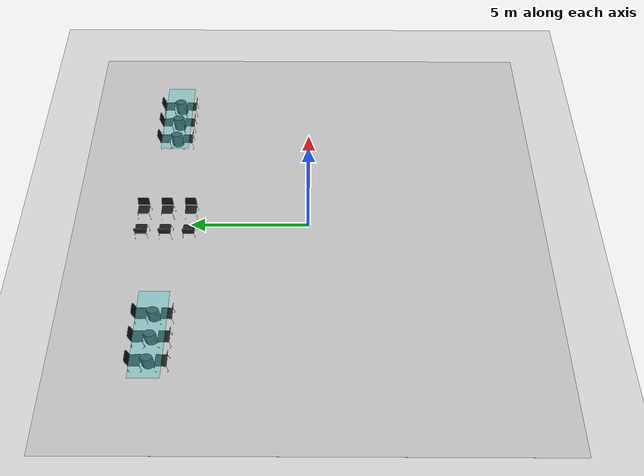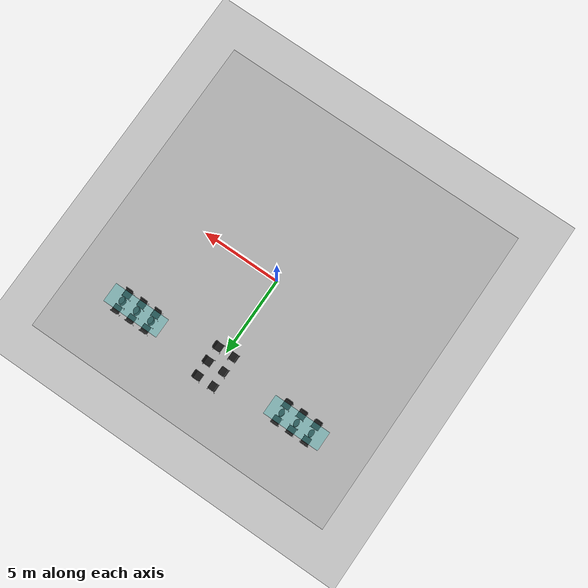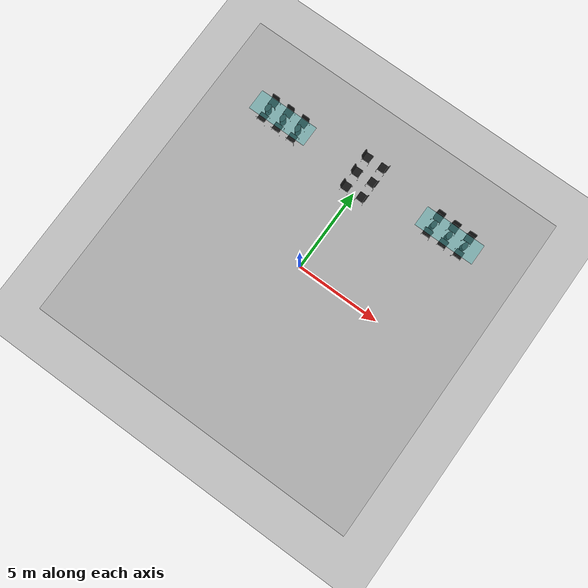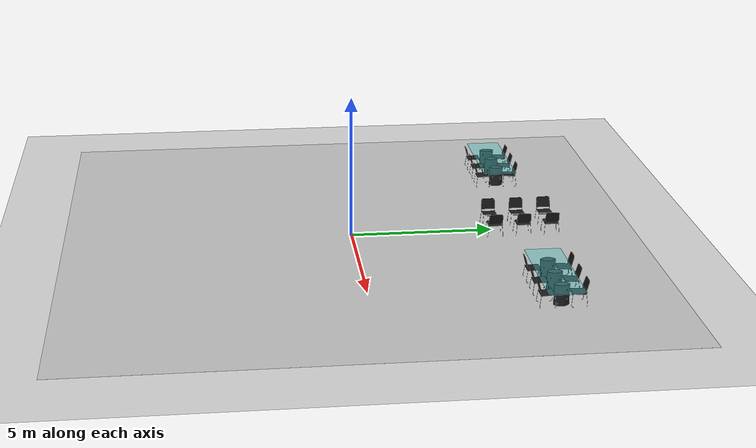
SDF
<sdf version="1.6">
 <world name="default">
  <model name="ground_plane">
   <static>1</static>
   <link name="link">
    <collision name="collision">
     <geometry><plane><normal>0 0 1</normal><size>100 100</size></plane></geometry>
     <surface><friction><ode><mu>1</mu><mu2>1</mu2></ode></friction></surface>
    </collision>
    <visual name="visual">
     <cast_shadows>0</cast_shadows>
     <geometry><plane><normal>0 0 1</normal><size>100 100</size></plane></geometry>
     <material>
      <script><uri>file://media/materials/scripts/gazebo.material</uri><name>Gazebo/Grey</name></script>
     </material>
    </visual>
    <velocity_decay><linear>0</linear><angular>0</angular></velocity_decay>
   </link>
  </model>
  <model name="chair_3">
   <link name="link_4">
    <pose>-0.282457 -0.259387 0 0 -0 0</pose>
    <visual name="visual">
     <geometry><mesh><uri>model://chair_3/meshes/model.dae</uri><scale>1 1 1</scale></mesh></geometry>
     <material>
      <lighting>1</lighting>
      <ambient>0 0 0 1</ambient>
      <diffuse>0.1 0.1 0.1 1</diffuse>
      <specular>0.01 0.01 0.01 1</specular>
      <emissive>0 0 0 1</emissive>
     </material>
    </visual>
    <collision name="collision">
     <geometry><mesh><uri>model://chair_3/meshes/model.dae</uri><scale>1 1 1</scale></mesh></geometry>
    </collision>
   </link>
   <static>1</static>
   <pose>4.5 6.5 0 0 -0 0</pose>
  </model>
  <model name="chair_3_clone">
   <link name="link_4">
    <pose>-0.282457 -0.259387 0 0 -0 0</pose>
    <visual name="visual">
     <geometry><mesh><uri>model://chair_3/meshes/model.dae</uri><scale>1 1 1</scale></mesh></geometry>
     <material>
      <lighting>1</lighting>
      <ambient>0 0 0 1</ambient>
      <diffuse>0.1 0.1 0.1 1</diffuse>
      <specular>0.01 0.01 0.01 1</specular>
      <emissive>0 0 0 1</emissive>
     </material>
    </visual>
    <collision name="collision">
     <geometry><mesh><uri>model://chair_3/meshes/model.dae</uri><scale>1 1 1</scale></mesh></geometry>
    </collision>
   </link>
   <static>1</static>
   <pose>5.5 6.5 0 0 -0 0</pose>
  </model>
  <model name="chair_3_clone_0">
   <link name="link_4">
    <pose>-0.282457 -0.259387 0 0 -0 0</pose>
    <visual name="visual">
     <geometry><mesh><uri>model://chair_3/meshes/model.dae</uri><scale>1 1 1</scale></mesh></geometry>
     <material>
      <lighting>1</lighting>
      <ambient>0 0 0 1</ambient>
      <diffuse>0.1 0.1 0.1 1</diffuse>
      <specular>0.01 0.01 0.01 1</specular>
      <emissive>0 0 0 1</emissive>
     </material>
    </visual>
    <collision name="collision">
     <geometry><mesh><uri>model://chair_3/meshes/model.dae</uri><scale>1 1 1</scale></mesh></geometry>
    </collision>
   </link>
   <static>1</static>
   <pose>6.5 6.5 0 0 -0 0</pose>
  </model>
  <model name="chair_3_clone_1">
   <link name="link_4">
    <pose>-0.282457 -0.259387 0 0 -0 0</pose>
    <visual name="visual">
     <geometry><mesh><uri>model://chair_3/meshes/model.dae</uri><scale>1 1 1</scale></mesh></geometry>
     <material>
      <lighting>1</lighting>
      <ambient>0 0 0 1</ambient>
      <diffuse>0.1 0.1 0.1 1</diffuse>
      <specular>0.01 0.01 0.01 1</specular>
      <emissive>0 0 0 1</emissive>
     </material>
    </visual>
    <collision name="collision">
     <geometry><mesh><uri>model://chair_3/meshes/model.dae</uri><scale>1 1 1</scale></mesh></geometry>
    </collision>
   </link>
   <static>1</static>
   <pose>6.5 5.5 0 0 -0 3.13584</pose>
  </model>
  <model name="chair_3_clone_1_clone">
   <link name="link_4">
    <pose>-0.282457 -0.259387 0 0 -0 0</pose>
    <visual name="visual">
     <geometry><mesh><uri>model://chair_3/meshes/model.dae</uri><scale>1 1 1</scale></mesh></geometry>
     <material>
      <lighting>1</lighting>
      <ambient>0 0 0 1</ambient>
      <diffuse>0.1 0.1 0.1 1</diffuse>
      <specular>0.01 0.01 0.01 1</specular>
      <emissive>0 0 0 1</emissive>
     </material>
    </visual>
    <collision name="collision">
     <geometry><mesh><uri>model://chair_3/meshes/model.dae</uri><scale>1 1 1</scale></mesh></geometry>
    </collision>
   </link>
   <static>1</static>
   <pose>5.5 5.5 0 0 -0 3.13584</pose>
  </model>
  <model name="chair_3_clone_1_clone_0">
   <link name="link_4">
    <pose>-0.282457 -0.259387 0 0 -0 0</pose>
    <visual name="visual">
     <geometry><mesh><uri>model://chair_3/meshes/model.dae</uri><scale>1 1 1</scale></mesh></geometry>
     <material>
      <lighting>1</lighting>
      <ambient>0 0 0 1</ambient>
      <diffuse>0.1 0.1 0.1 1</diffuse>
      <specular>0.01 0.01 0.01 1</specular>
      <emissive>0 0 0 1</emissive>
     </material>
    </visual>
    <collision name="collision">
     <geometry><mesh><uri>model://chair_3/meshes/model.dae</uri><scale>1 1 1</scale></mesh></geometry>
    </collision>
   </link>
   <static>1</static>
   <pose>4.5 5.5 0 0 -0 3.13584</pose>
  </model>
  <model name="table_conference_3">
   <link name="link_6">
    <visual name="visual">
     <geometry><mesh><uri>model://table_conference_3/meshes/leg.dae</uri><scale>1 1 1</scale></mesh></geometry>
     <material>
      <script>
       <uri>model://table_conference_3/materials/scripts</uri>
       <uri>model://table_conference_3/materials/textures</uri>
       <name>table_conf_3</name>
      </script>
     </material>
    </visual>
    <collision name="collision">
     <geometry><mesh><uri>model://table_conference_3/meshes/leg.dae</uri><scale>1 1 1</scale></mesh></geometry>
    </collision>
   </link>
   <link name="link_7">
    <visual name="visual">
     <geometry><mesh><uri>model://table_conference_3/meshes/top.dae</uri><scale>1 1 1</scale></mesh></geometry>
     <material>
      <lighting>1</lighting>
      <ambient>0.278 0.776 0.776 1</ambient>
      <diffuse>0.278 0.776 0.776 1</diffuse>
      <specular>0.01 0.01 0.01 1</specular>
      <emissive>0 0 0 1</emissive>
      <shader type="vertex"><normal_map>__default__</normal_map></shader>
     </material>
     <transparency>0.6</transparency>
    </visual>
    <collision name="collision">
     <geometry><mesh><uri>model://table_conference_3/meshes/top.dae</uri><scale>1 1 1</scale></mesh></geometry>
    </collision>
   </link>
   <link name="link_8">
    <pose>0 1 0 0 -0 0</pose>
    <visual name="visual">
     <geometry><mesh><uri>model://table_conference_3/meshes/leg.dae</uri><scale>1 1 1</scale></mesh></geometry>
     <material>
      <script>
       <uri>model://table_conference_3/materials/scripts</uri>
       <uri>model://table_conference_3/materials/textures</uri>
       <name>table_conf_3</name>
      </script>
     </material>
    </visual>
    <collision name="collision">
     <geometry><mesh><uri>model://table_conference_3/meshes/leg.dae</uri><scale>1 1 1</scale></mesh></geometry>
    </collision>
   </link>
   <link name="link_9">
    <pose>0 -1 0 0 -0 0</pose>
    <visual name="visual">
     <geometry><mesh><uri>model://table_conference_3/meshes/leg.dae</uri><scale>1 1 1</scale></mesh></geometry>
     <material>
      <script>
       <uri>model://table_conference_3/materials/scripts</uri>
       <uri>model://table_conference_3/materials/textures</uri>
       <name>table_conf_3</name>
      </script>
     </material>
    </visual>
    <collision name="collision">
     <geometry><mesh><uri>model://table_conference_3/meshes/leg.dae</uri><scale>1 1 1</scale></mesh></geometry>
    </collision>
   </link>
   <static>1</static>
   <pose>5.5 6 -0.002256 0 0 -1.57202</pose>
  </model>
  <model name="table_conference_3_0">
   <link name="link_6">
    <visual name="visual">
     <geometry><mesh><uri>model://table_conference_3/meshes/leg.dae</uri><scale>1 1 1</scale></mesh></geometry>
     <material>
      <script>
       <uri>model://table_conference_3/materials/scripts</uri>
       <uri>model://table_conference_3/materials/textures</uri>
       <name>table_conf_3</name>
      </script>
     </material>
    </visual>
    <collision name="collision">
     <geometry><mesh><uri>model://table_conference_3/meshes/leg.dae</uri><scale>1 1 1</scale></mesh></geometry>
    </collision>
   </link>
   <link name="link_7">
    <visual name="visual">
     <geometry><mesh><uri>model://table_conference_3/meshes/top.dae</uri><scale>1 1 1</scale></mesh></geometry>
     <material>
      <lighting>1</lighting>
      <ambient>0.278 0.776 0.776 1</ambient>
      <diffuse>0.278 0.776 0.776 1</diffuse>
      <specular>0.01 0.01 0.01 1</specular>
      <emissive>0 0 0 1</emissive>
      <shader type="vertex"><normal_map>__default__</normal_map></shader>
     </material>
     <transparency>0.6</transparency>
    </visual>
    <collision name="collision">
     <geometry><mesh><uri>model://table_conference_3/meshes/top.dae</uri><scale>1 1 1</scale></mesh></geometry>
    </collision>
   </link>
   <link name="link_8">
    <pose>0 1 0 0 -0 0</pose>
    <visual name="visual">
     <geometry><mesh><uri>model://table_conference_3/meshes/leg.dae</uri><scale>1 1 1</scale></mesh></geometry>
     <material>
      <script>
       <uri>model://table_conference_3/materials/scripts</uri>
       <uri>model://table_conference_3/materials/textures</uri>
       <name>table_conf_3</name>
      </script>
     </material>
    </visual>
    <collision name="collision">
     <geometry><mesh><uri>model://table_conference_3/meshes/leg.dae</uri><scale>1 1 1</scale></mesh></geometry>
    </collision>
   </link>
   <link name="link_9">
    <pose>0 -1 0 0 -0 0</pose>
    <visual name="visual">
     <geometry><mesh><uri>model://table_conference_3/meshes/leg.dae</uri><scale>1 1 1</scale></mesh></geometry>
     <material>
      <script>
       <uri>model://table_conference_3/materials/scripts</uri>
       <uri>model://table_conference_3/materials/textures</uri>
       <name>table_conf_3</name>
      </script>
     </material>
    </visual>
    <collision name="collision">
     <geometry><mesh><uri>model://table_conference_3/meshes/leg.dae</uri><scale>1 1 1</scale></mesh></geometry>
    </collision>
   </link>
   <static>1</static>
   <pose>-5.5 6 0 0 -0 1.5708</pose>
  </model>
  <model name="chair_3_0">
   <link name="link_4">
    <pose>-0.282457 -0.259387 0 0 -0 0</pose>
    <visual name="visual">
     <geometry><mesh><uri>model://chair_3/meshes/model.dae</uri><scale>1 1 1</scale></mesh></geometry>
     <material>
      <lighting>1</lighting>
      <ambient>0 0 0 1</ambient>
      <diffuse>0.1 0.1 0.1 1</diffuse>
      <specular>0.01 0.01 0.01 1</specular>
      <emissive>0 0 0 1</emissive>
     </material>
    </visual>
    <collision name="collision">
     <geometry><mesh><uri>model://chair_3/meshes/model.dae</uri><scale>1 1 1</scale></mesh></geometry>
    </collision>
   </link>
   <static>1</static>
   <pose>-6.5 6.5 0 0 -0 0</pose>
  </model>
  <model name="chair_3_1">
   <link name="link_4">
    <pose>-0.282457 -0.259387 0 0 -0 0</pose>
    <visual name="visual">
     <geometry><mesh><uri>model://chair_3/meshes/model.dae</uri><scale>1 1 1</scale></mesh></geometry>
     <material>
      <lighting>1</lighting>
      <ambient>0 0 0 1</ambient>
      <diffuse>0.1 0.1 0.1 1</diffuse>
      <specular>0.01 0.01 0.01 1</specular>
      <emissive>0 0 0 1</emissive>
     </material>
    </visual>
    <collision name="collision">
     <geometry><mesh><uri>model://chair_3/meshes/model.dae</uri><scale>1 1 1</scale></mesh></geometry>
    </collision>
   </link>
   <static>1</static>
   <pose>-5.5 6.5 0 0 -0 0</pose>
  </model>
  <model name="chair_3_2">
   <link name="link_4">
    <pose>-0.282457 -0.259387 0 0 -0 0</pose>
    <visual name="visual">
     <geometry><mesh><uri>model://chair_3/meshes/model.dae</uri><scale>1 1 1</scale></mesh></geometry>
     <material>
      <lighting>1</lighting>
      <ambient>0 0 0 1</ambient>
      <diffuse>0.1 0.1 0.1 1</diffuse>
      <specular>0.01 0.01 0.01 1</specular>
      <emissive>0 0 0 1</emissive>
     </material>
    </visual>
    <collision name="collision">
     <geometry><mesh><uri>model://chair_3/meshes/model.dae</uri><scale>1 1 1</scale></mesh></geometry>
    </collision>
   </link>
   <static>1</static>
   <pose>-4.5 6.5 0 0 -0 0</pose>
  </model>
  <model name="chair_3_3">
   <link name="link_4">
    <pose>-0.282457 -0.259387 0 0 -0 0</pose>
    <visual name="visual">
     <geometry><mesh><uri>model://chair_3/meshes/model.dae</uri><scale>1 1 1</scale></mesh></geometry>
     <material>
      <lighting>1</lighting>
      <ambient>0 0 0 1</ambient>
      <diffuse>0.1 0.1 0.1 1</diffuse>
      <specular>0.01 0.01 0.01 1</specular>
      <emissive>0 0 0 1</emissive>
     </material>
    </visual>
    <collision name="collision">
     <geometry><mesh><uri>model://chair_3/meshes/model.dae</uri><scale>1 1 1</scale></mesh></geometry>
    </collision>
   </link>
   <static>1</static>
   <pose>-0.500001 7 0 0 -0 1.5708</pose>
  </model>
  <model name="chair_3_4">
   <link name="link_4">
    <pose>-0.282457 -0.259387 0 0 -0 0</pose>
    <visual name="visual">
     <geometry><mesh><uri>model://chair_3/meshes/model.dae</uri><scale>1 1 1</scale></mesh></geometry>
     <material>
      <lighting>1</lighting>
      <ambient>0 0 0 1</ambient>
      <diffuse>0.1 0.1 0.1 1</diffuse>
      <specular>0.01 0.01 0.01 1</specular>
      <emissive>0 0 0 1</emissive>
     </material>
    </visual>
    <collision name="collision">
     <geometry><mesh><uri>model://chair_3/meshes/model.dae</uri><scale>1 1 1</scale></mesh></geometry>
    </collision>
   </link>
   <static>1</static>
   <pose>-0.500001 6 0 0 -0 1.5708</pose>
  </model>
  <model name="chair_3_5">
   <link name="link_4">
    <pose>-0.282457 -0.259387 0 0 -0 0</pose>
    <visual name="visual">
     <geometry><mesh><uri>model://chair_3/meshes/model.dae</uri><scale>1 1 1</scale></mesh></geometry>
     <material>
      <lighting>1</lighting>
      <ambient>0 0 0 1</ambient>
      <diffuse>0.1 0.1 0.1 1</diffuse>
      <specular>0.01 0.01 0.01 1</specular>
      <emissive>0 0 0 1</emissive>
     </material>
    </visual>
    <collision name="collision">
     <geometry><mesh><uri>model://chair_3/meshes/model.dae</uri><scale>1 1 1</scale></mesh></geometry>
    </collision>
   </link>
   <static>1</static>
   <pose>-6.5 5.5 0 0 -0 3.14</pose>
  </model>
  <model name="chair_3_6">
   <link name="link_4">
    <pose>-0.282457 -0.259387 0 0 -0 0</pose>
    <visual name="visual">
     <geometry><mesh><uri>model://chair_3/meshes/model.dae</uri><scale>1 1 1</scale></mesh></geometry>
     <material>
      <lighting>1</lighting>
      <ambient>0 0 0 1</ambient>
      <diffuse>0.1 0.1 0.1 1</diffuse>
      <specular>0.01 0.01 0.01 1</specular>
      <emissive>0 0 0 1</emissive>
     </material>
    </visual>
    <collision name="collision">
     <geometry><mesh><uri>model://chair_3/meshes/model.dae</uri><scale>1 1 1</scale></mesh></geometry>
    </collision>
   </link>
   <static>1</static>
   <pose>-5.5 5.5 0 0 -0 3.14</pose>
  </model>
  <model name="chair_3_7">
   <link name="link_4">
    <pose>-0.282457 -0.259387 0 0 -0 0</pose>
    <visual name="visual">
     <geometry><mesh><uri>model://chair_3/meshes/model.dae</uri><scale>1 1 1</scale></mesh></geometry>
     <material>
      <lighting>1</lighting>
      <ambient>0 0 0 1</ambient>
      <diffuse>0.1 0.1 0.1 1</diffuse>
      <specular>0.01 0.01 0.01 1</specular>
      <emissive>0 0 0 1</emissive>
     </material>
    </visual>
    <collision name="collision">
     <geometry><mesh><uri>model://chair_3/meshes/model.dae</uri><scale>1 1 1</scale></mesh></geometry>
    </collision>
   </link>
   <static>1</static>
   <pose>-4.5 5.5 0 0 -0 3.14</pose>
  </model>
  <model name="chair_3_8">
   <link name="link_4">
    <pose>-0.282457 -0.259387 0 0 -0 0</pose>
    <visual name="visual">
     <geometry><mesh><uri>model://chair_3/meshes/model.dae</uri><scale>1 1 1</scale></mesh></geometry>
     <material>
      <lighting>1</lighting>
      <ambient>0 0 0 1</ambient>
      <diffuse>0.1 0.1 0.1 1</diffuse>
      <specular>0.01 0.01 0.01 1</specular>
      <emissive>0 0 0 1</emissive>
     </material>
    </visual>
    <collision name="collision">
     <geometry><mesh><uri>model://chair_3/meshes/model.dae</uri><scale>1 1 1</scale></mesh></geometry>
    </collision>
   </link>
   <static>1</static>
   <pose>0.499999 5 0 0 0 -1.5708</pose>
  </model>
  <model name="chair_3_9">
   <link name="link_4">
    <pose>-0.282457 -0.259387 0 0 -0 0</pose>
    <visual name="visual">
     <geometry><mesh><uri>model://chair_3/meshes/model.dae</uri><scale>1 1 1</scale></mesh></geometry>
     <material>
      <lighting>1</lighting>
      <ambient>0 0 0 1</ambient>
      <diffuse>0.1 0.1 0.1 1</diffuse>
      <specular>0.01 0.01 0.01 1</specular>
      <emissive>0 0 0 1</emissive>
     </material>
    </visual>
    <collision name="collision">
     <geometry><mesh><uri>model://chair_3/meshes/model.dae</uri><scale>1 1 1</scale></mesh></geometry>
    </collision>
   </link>
   <static>1</static>
   <pose>-0.500001 5 0 0 -0 1.5708</pose>
  </model>
  <model name="chair_3_10">
   <link name="link_4">
    <pose>-0.282457 -0.259387 0 0 -0 0</pose>
    <visual name="visual">
     <geometry><mesh><uri>model://chair_3/meshes/model.dae</uri><scale>1 1 1</scale></mesh></geometry>
     <material>
      <lighting>1</lighting>
      <ambient>0 0 0 1</ambient>
      <diffuse>0.1 0.1 0.1 1</diffuse>
      <specular>0.01 0.01 0.01 1</specular>
      <emissive>0 0 0 1</emissive>
     </material>
    </visual>
    <collision name="collision">
     <geometry><mesh><uri>model://chair_3/meshes/model.dae</uri><scale>1 1 1</scale></mesh></geometry>
    </collision>
   </link>
   <static>1</static>
   <pose>0.499999 7 0 0 0 -1.5708</pose>
  </model>
  <model name="chair_3_11">
   <link name="link_4">
    <pose>-0.282457 -0.259387 0 0 -0 0</pose>
    <visual name="visual">
     <geometry><mesh><uri>model://chair_3/meshes/model.dae</uri><scale>1 1 1</scale></mesh></geometry>
     <material>
      <lighting>1</lighting>
      <ambient>0 0 0 1</ambient>
      <diffuse>0.1 0.1 0.1 1</diffuse>
      <specular>0.01 0.01 0.01 1</specular>
      <emissive>0 0 0 1</emissive>
     </material>
    </visual>
    <collision name="collision">
     <geometry><mesh><uri>model://chair_3/meshes/model.dae</uri><scale>1 1 1</scale></mesh></geometry>
    </collision>
   </link>
   <static>1</static>
   <pose>0.499999 6 0 0 0 -1.5708</pose>
  </model>
  <model name="Floor_room">
   <link name="main">
    <pose>0 0 0.01 0 -0 0</pose>
    <collision name="main_Collision">
     <geometry><box><size>20 20 0.001</size></box></geometry>
     <surface>
      <friction>
       <ode><mu>100</mu><mu2>50</mu2></ode>
       <torsional>
        <coefficient>1</coefficient>
        <surface_radius>0.5</surface_radius>
        <use_patch_radius>0</use_patch_radius>
       </torsional>
      </friction>
     </surface>
    </collision>
    <visual name="main_Visual">
     <geometry><box><size>20 20 0.001</size></box></geometry>
     <material>
      <script>
       <uri>model://Floor_room/materials/scripts</uri>
       <uri>model://Floor_room/materials/textures</uri>
       <name>floor_room</name>
      </script>
     </material>
    </visual>
   </link>
   <static>1</static>
  </model>
 </world>
</sdf>
